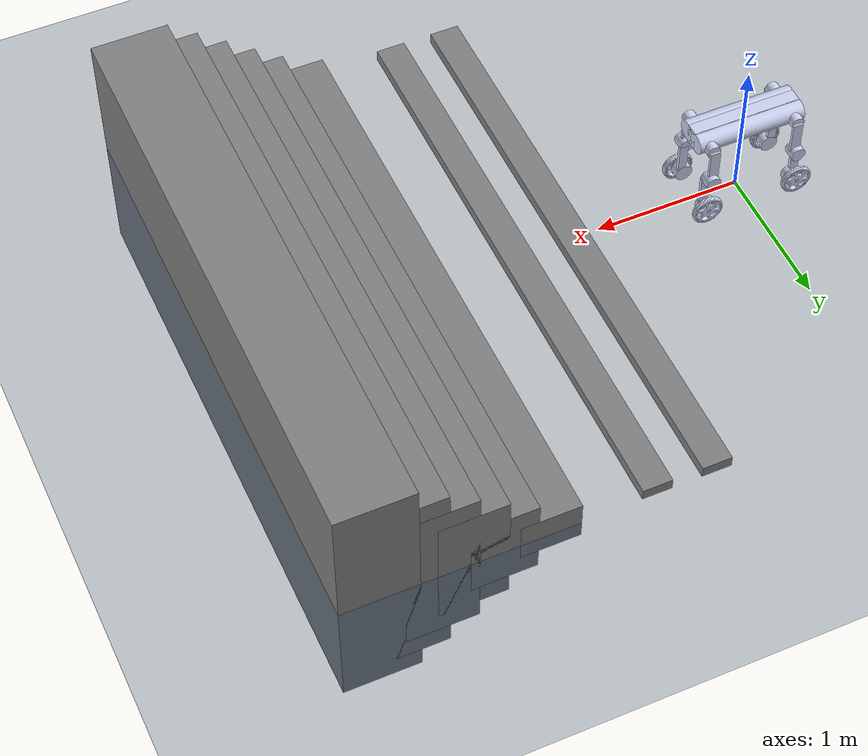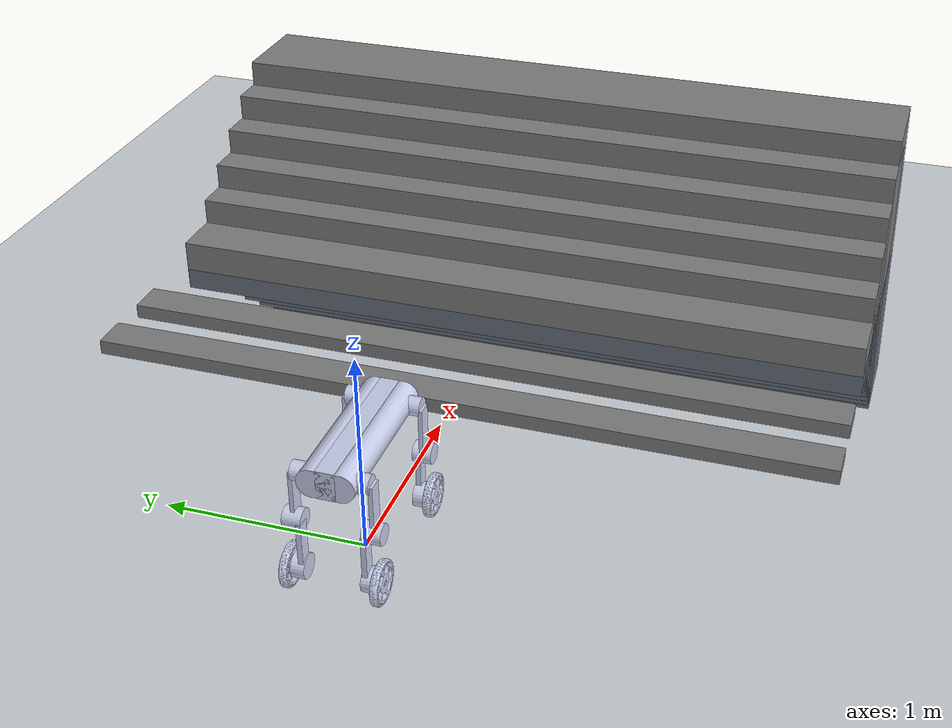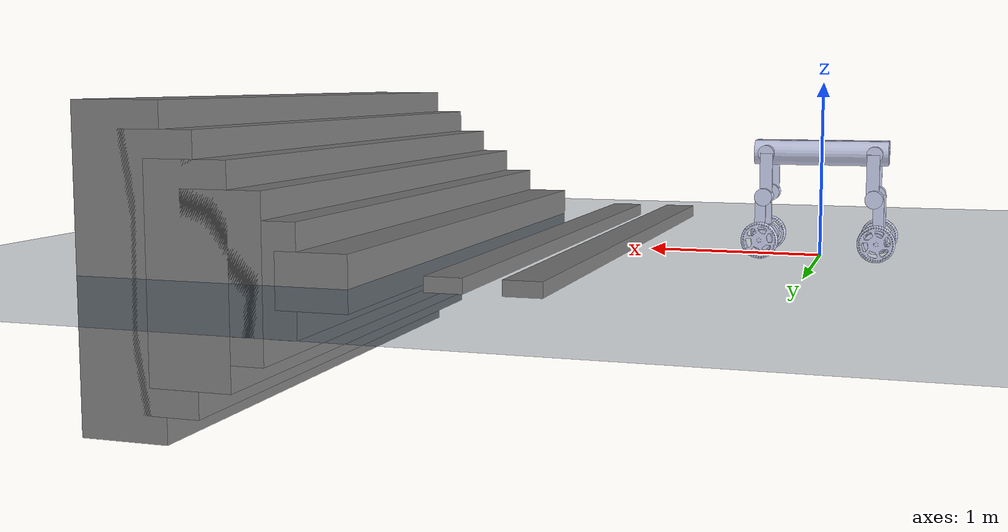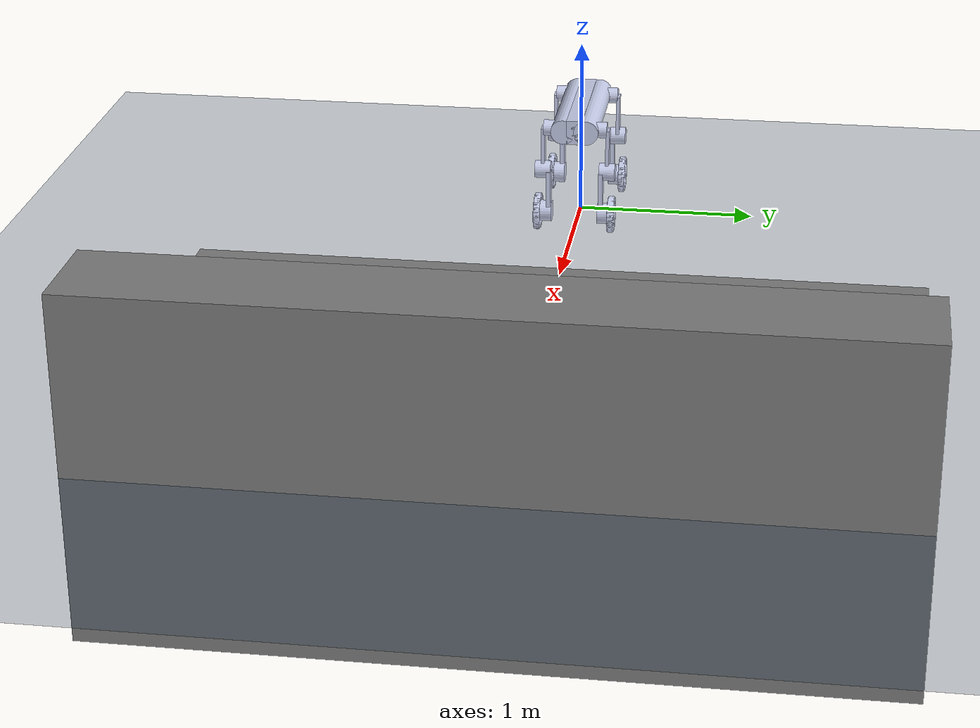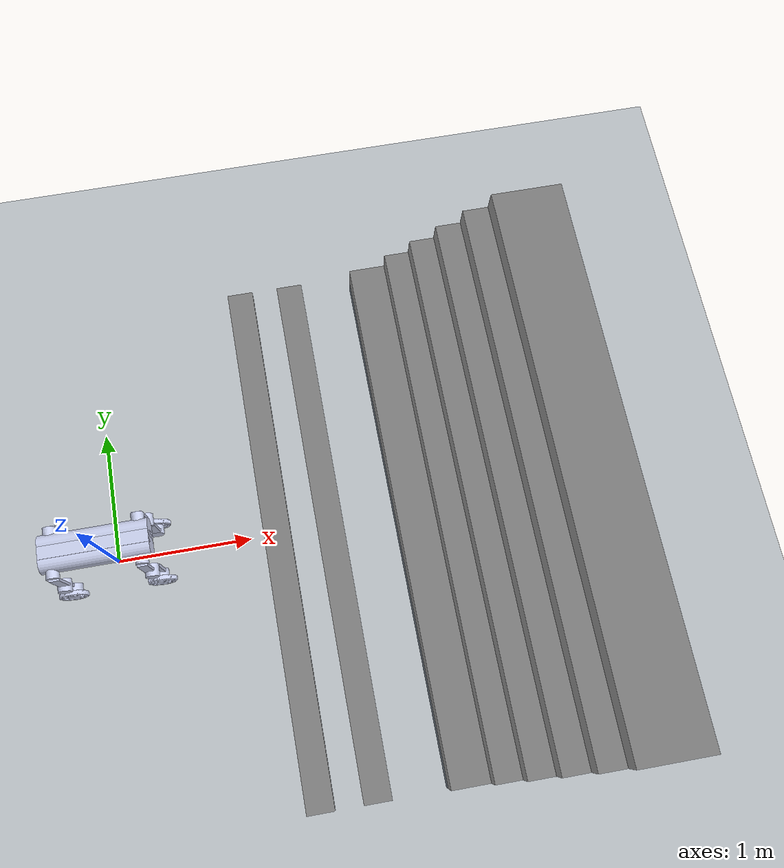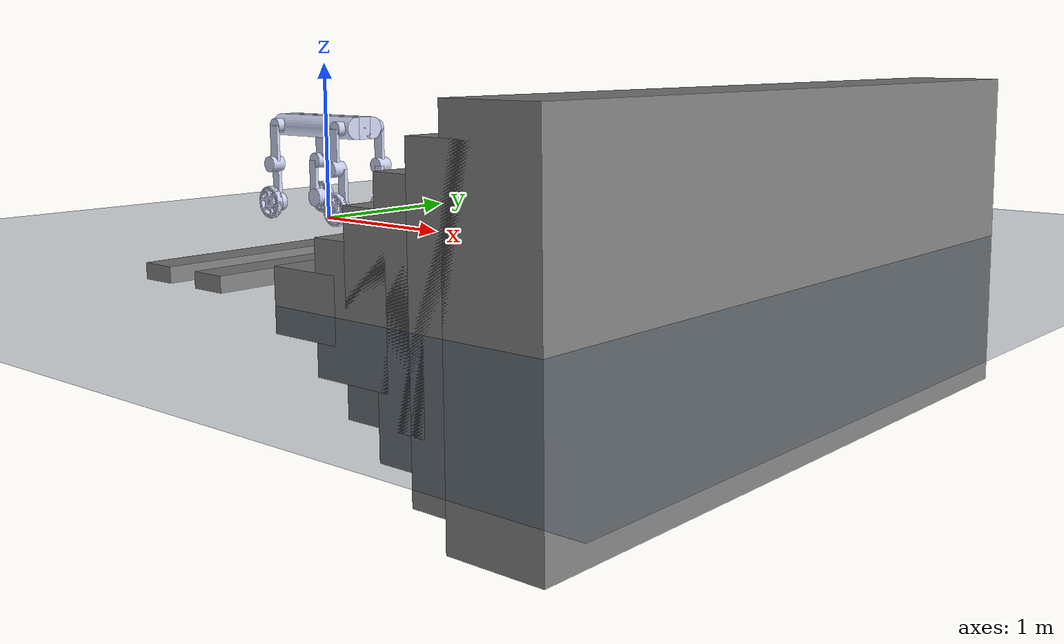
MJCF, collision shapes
<mujoco model="jk04 scene">
  <include file="jk04_description.xml"/>

  <statistic center="0 0 0.1" extent="0.8"/>

  <visual>
    <headlight diffuse="0.6 0.6 0.6" ambient="0.3 0.3 0.3" specular="0 0 0"/>
    <rgba haze="0.15 0.25 0.35 1"/>
    <global azimuth="-130" elevation="-20"/>
  </visual>

  <asset>
    <texture type="skybox" builtin="gradient" rgb1="0.3 0.5 0.7" rgb2="0 0 0" width="512" height="3072"/>
    <texture type="2d" name="groundplane" builtin="checker" mark="edge" rgb1="0.2 0.3 0.4" rgb2="0.1 0.2 0.3"
      markrgb="0.8 0.8 0.8" width="300" height="300"/>
    <material name="groundplane" texture="groundplane" texuniform="true" texrepeat="5 5" reflectance="0.2"/>
  </asset>

  <worldbody>
    <light pos="0 0 1.5" dir="0 0 -1" directional="true"/>
    <geom name="floor" size="0 0 0.05" type="plane" material="groundplane"/>

    <geom pos="1.2 0 0.04" type="box"  size="0.1 2 0.04" quat="1.0 0 0 0"/>
    <geom pos="1.6 0 0.04" type="box"  size="0.1 2 0.04" quat="1.0 0 0 0"/>

    <geom pos="2.3 0 0.02" type="box"  size="0.2 2 0.15" quat="1.0 0 0 0"/>
    <geom pos="2.6 0 0.02" type="box"  size="0.22 2 0.3" quat="1.0 0 0 0"/>
    <geom pos="2.8 0 0.02" type="box"  size="0.23 2 0.45" quat="1.0 0 0 0"/>
    <geom pos="3 0 0.02" type="box"  size="0.24 2 0.6" quat="1.0 0 0 0"/>
    <geom pos="3.2 0 0.02" type="box"  size="0.25 2 0.75" quat="1.0 0 0 0"/>
    <geom pos="3.4 0 0.02" type="box"  size="0.26 2 0.9" quat="1.0 0 0 0"/>
  </worldbody>
</mujoco>

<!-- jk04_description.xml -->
<mujoco model="jk04_description">
    <default>
        <default class="jk04">
            <default class="motor">
                <joint/>
                <motor/>
            </default>
            <default class="visual">
                <geom material="default_material" contype="0" conaffinity="0" group="2"/>
            </default>
            <default class="collision">
                <geom material="collision_material" condim="3" contype="1" conaffinity="1" solref="0.005 1"
                      friction="1 0.01 0.001" density="0" group="1"/>
            </default>
        </default>
    </default>

  <compiler angle="radian" meshdir="/home/lily/rl_sar/rl_sar_jk234/src/rl_sar_zoo/jk04_description/meshes/"/>
  <compiler autolimits="true"/>
  <asset>
    <mesh name="base_link" file="base_link.STL"/>
    <mesh name="fl_hipx" file="fl_hipx.STL"/>
    <mesh name="fl_hipy" file="fl_hipy.STL"/>
    <mesh name="fl_knee" file="fl_knee.STL"/>
    <mesh name="fl_wheel" file="fl_wheel.STL"/>
    <mesh name="fr_hipx" file="fr_hipx.STL"/>
    <mesh name="fr_hipy" file="fr_hipy.STL"/>
    <mesh name="fr_knee" file="fr_knee.STL"/>
    <mesh name="fr_wheel" file="fr_wheel.STL"/>
    <mesh name="hl_hipx" file="hl_hipx.STL"/>`
    <mesh name="hl_hipy" file="hl_hipy.STL"/>
    <mesh name="hl_knee" file="hl_knee.STL"/>
    <mesh name="hl_wheel" file="hl_wheel.STL"/>
    <mesh name="hr_hipx" file="hr_hipx.STL"/>
    <mesh name="hr_hipy" file="hr_hipy.STL"/>
    <mesh name="hr_knee" file="hr_knee.STL"/>
    <mesh name="hr_wheel" file="hr_wheel.STL"/>
  </asset>

  <worldbody>
    <body name="base_link" pos="0 0 0.6">
      <inertial pos="0.000675035 2.78408e-05 0.000655279" quat="0.000154212 0.707105 -4.9244e-05 0.707109" mass="16.3316" diaginertia="0.531655 0.472244 0.103079"/>
      <geom type="mesh" contype="0" conaffinity="0" group="1" density="0" rgba="0.792157 0.819608 0.933333 1" mesh="base_link"/>
      <geom size="0.375 0.045 0.07" type="box" rgba="0.792157 0.819608 0.933333 1"/>
      <geom size="0.07 0.375" pos="0 0.065 0" quat="0.707107 0 0.707107 0" type="cylinder" rgba="0.792157 0.819608 0.933333 1"/>
      <geom size="0.07 0.375" pos="0 -0.065 0" quat="0.707107 0 0.707107 0" type="cylinder" rgba="0.792157 0.819608 0.933333 1"/>
      <body name="fl_hipx" pos="0.247 0.0750008 0">
        <inertial pos="0.0556554 0.0328206 0.000193016" quat="0.373595 0.647866 -0.276676 0.603446" mass="1.5575" diaginertia="0.00219191 0.00208826 0.001613"/>
        <joint name="fl_hipx_joint" pos="0 0 0" axis="1 0 0" range="-0.611 0.611" actuatorfrcrange="-96 96"/>
        <geom type="mesh" contype="0" conaffinity="0" group="1" density="0" rgba="0.792157 0.819608 0.933333 1" mesh="fl_hipx"/>
        <geom size="0.045 0.05" pos="0.055 0.055 0" quat="0.707107 0.707107 0 0" type="cylinder" rgba="0.792157 0.819608 0.933333 1"/>
        <body name="fl_hipy" pos="0.0599991 0.0685997 0">
          <inertial pos="0.000258835 0.034274 -0.110988" quat="0.705684 -0.0166195 0.0392081 0.707246" mass="2.035" diaginertia="0.0230749 0.022166 0.00199006"/>
          <joint name="fl_hipy_joint" pos="0 0 0" axis="0 1 0" range="-1.57 1.57" actuatorfrcrange="-96 96"/>
          <geom type="mesh" contype="0" conaffinity="0" group="1" density="0" rgba="0.792157 0.819608 0.933333 1" mesh="fl_hipy"/>
          <geom size="0.035 0.01 0.125" pos="-0.01 0.04 -0.125" type="box" rgba="0.792157 0.819608 0.933333 1"/>
          <geom size="0.05 0.045" pos="0 0.04 -0.25" quat="0.707107 0.707107 0 0" type="cylinder" rgba="0.792157 0.819608 0.933333 1"/>
          <body name="fl_knee" pos="0.00899991 0.0358998 -0.25">
            <inertial pos="0.0101548 -0.0225144 -0.137662" quat="0.792974 -0.0453958 0.0483556 0.605635" mass="1.931" diaginertia="0.0207212 0.0203778 0.0020487"/>
            <joint name="fl_knee_joint" pos="0 0 0" axis="0 1 0" range="-3.14 3.14" actuatorfrcrange="-128 128"/>
            <geom type="mesh" contype="0" conaffinity="0" group="1" density="0" rgba="0.792157 0.819608 0.933333 1" mesh="fl_knee"/>
            <geom size="0.03 0.0125 0.125" pos="0.015 -0.03 -0.125" type="box" rgba="0.792157 0.819608 0.933333 1"/>
            <geom size="0.06 0.0325" pos="0 -0.015 -0.25" quat="0.707107 0.707107 0 0" type="cylinder" rgba="0.792157 0.819608 0.933333 1"/>
            <body name="fl_wheel" pos="0.00899992 0.0449 -0.25">
              <inertial pos="-1.57184e-06 -0.0115004 3.02361e-07" quat="0.524056 0.474727 0.474727 0.524056" mass="0.943" diaginertia="0.0070243 0.00360758 0.00360748"/>
              <joint name="fl_wheel_joint" pos="0 0 0" axis="0 1 0" actuatorfrcrange="-54 54"/>
              <geom type="mesh" contype="0" conaffinity="0" group="1" density="0" rgba="0.792157 0.819608 0.933333 1" mesh="fl_wheel"/>
              <geom type="mesh" rgba="0.792157 0.819608 0.933333 1" mesh="fl_wheel"/>
            </body>
          </body>
        </body>
      </body>
      <body name="fr_hipx" pos="0.247 -0.074999 0">
        <inertial pos="0.0556557 -0.0328219 -0.00019214" quat="0.326526 0.616981 -0.324875 0.638099" mass="1.5575" diaginertia="0.00218999 0.00209058 0.00161259"/>
        <joint name="fr_hipx_joint" pos="0 0 0" axis="1 0 0" range="-0.611 0.611" actuatorfrcrange="-96 96"/>
        <geom type="mesh" contype="0" conaffinity="0" group="1" density="0" rgba="0.792157 0.819608 0.933333 1" mesh="fr_hipx"/>
        <geom size="0.045 0.05" pos="0.055 -0.055 0" quat="0.707107 0.707107 0 0" type="cylinder" rgba="0.792157 0.819608 0.933333 1"/>
        <body name="fr_hipy" pos="0.0599995 -0.0686016 0">
          <inertial pos="0.000147305 -0.0342745 -0.111062" quat="0.703896 0.0386374 -0.0174093 0.709038" mass="2.035" diaginertia="0.0231072 0.0221989 0.00198787"/>
          <joint name="fr_hipy_joint" pos="0 0 0" axis="0 1 0" range="-1.57 1.57" actuatorfrcrange="-96 96"/>
          <geom type="mesh" contype="0" conaffinity="0" group="1" density="0" rgba="0.792157 0.819608 0.933333 1" mesh="fr_hipy"/>
          <geom size="0.035 0.01 0.125" pos="-0.01 -0.04 -0.125" type="box" rgba="0.792157 0.819608 0.933333 1"/>
          <geom size="0.05 0.045" pos="0 -0.04 -0.25" quat="0.707107 0.707107 0 0" type="cylinder" rgba="0.792157 0.819608 0.933333 1"/>
          <body name="fr_knee" pos="0.00899991 -0.0358998 -0.25">
            <inertial pos="0.0101549 0.0225146 -0.137662" quat="0.614231 0.0487038 -0.0451045 0.786329" mass="1.931" diaginertia="0.0207015 0.0203767 0.00203791"/>
            <joint name="fr_knee_joint" pos="0 0 0" axis="0 1 0" range="-3.14 3.14" actuatorfrcrange="-128 128"/>
            <geom type="mesh" contype="0" conaffinity="0" group="1" density="0" rgba="0.792157 0.819608 0.933333 1" mesh="fr_knee"/>
            <geom size="0.03 0.0125 0.125" pos="0.015 0.03 -0.125" type="box" rgba="0.792157 0.819608 0.933333 1"/>
            <geom size="0.06 0.0325" pos="0 0.015 -0.25" quat="0.707107 0.707107 0 0" type="cylinder" rgba="0.792157 0.819608 0.933333 1"/>
            <body name="fr_wheel" pos="0.00899992 -0.0449 -0.25">
              <inertial pos="-1.57177e-06 0.0115004 -3.02682e-07" quat="0.474727 0.524056 0.524056 0.474727" mass="0.943" diaginertia="0.0070243 0.00360758 0.00360748"/>
              <joint name="fr_wheel_joint" pos="0 0 0" axis="0 1 0" actuatorfrcrange="-54 54"/>
              <geom type="mesh" contype="0" conaffinity="0" group="1" density="0" rgba="0.792157 0.819608 0.933333 1" mesh="fr_wheel"/>
              <geom type="mesh" rgba="0.792157 0.819608 0.933333 1" mesh="fr_wheel"/>
            </body>
          </body>
        </body>
      </body>
      <body name="hl_hipx" pos="-0.247 0.074999 0">
        <inertial pos="-0.0556556 0.0328221 -0.000191947" quat="0.324875 0.638099 -0.326526 0.616981" mass="1.5575" diaginertia="0.00218999 0.00209058 0.00161259"/>
        <joint name="hl_hipx_joint" pos="0 0 0" axis="1 0 0" range="-0.611 0.611" actuatorfrcrange="-96 96"/>
        <geom type="mesh" contype="0" conaffinity="0" group="1" density="0" rgba="0.792157 0.819608 0.933333 1" mesh="hl_hipx"/>
        <geom size="0.045 0.05" pos="-0.055 0.055 0" quat="0.707107 0.707107 0 0" type="cylinder" rgba="0.792157 0.819608 0.933333 1"/>
        <body name="hl_hipy" pos="-0.0599997 0.0686015 0">
          <inertial pos="-0.000147305 0.0342745 -0.111062" quat="0.703896 -0.0386374 0.0174093 0.709038" mass="2.035" diaginertia="0.0231072 0.0221989 0.00198787"/>
          <joint name="hl_hipy_joint" pos="0 0 0" axis="0 1 0" range="-1.57 1.57" actuatorfrcrange="-96 96"/>
          <geom type="mesh" contype="0" conaffinity="0" group="1" density="0" rgba="0.792157 0.819608 0.933333 1" mesh="hl_hipy"/>
          <geom size="0.035 0.01 0.125" pos="0.01 0.04 -0.125" type="box" rgba="0.792157 0.819608 0.933333 1"/>
          <geom size="0.05 0.045" pos="0 0.04 -0.25" quat="0.707107 0.707107 0 0" type="cylinder" rgba="0.792157 0.819608 0.933333 1"/>
          <body name="hl_knee" pos="-0.00899991 0.0358998 -0.25">
            <inertial pos="-0.0101549 -0.0225146 -0.137662" quat="0.600549 -0.0485133 0.0447296 0.79686" mass="1.931" diaginertia="0.0207934 0.0204209 0.00207725"/>
            <joint name="hl_knee_joint" pos="0 0 0" axis="0 1 0" range="-3.14 3.14" actuatorfrcrange="-128 128"/>
            <geom type="mesh" contype="0" conaffinity="0" group="1" density="0" rgba="0.792157 0.819608 0.933333 1" mesh="hl_knee"/>
            <geom size="0.03 0.0125 0.125" pos="-0.015 -0.03 -0.125" type="box" rgba="0.792157 0.819608 0.933333 1"/>
            <geom size="0.06 0.0325" pos="0 -0.015 -0.25" quat="0.707107 0.707107 0 0" type="cylinder" rgba="0.792157 0.819608 0.933333 1"/>
            <body name="hl_wheel" pos="-0.00899992 0.0449 -0.25">
              <inertial pos="-1.61318e-06 -0.0115004 3.02355e-07" quat="0.524056 0.474727 0.474727 0.524056" mass="0.943" diaginertia="0.0070243 0.00360758 0.00360748"/>
              <joint name="hl_wheel_joint" pos="0 0 0" axis="0 1 0" actuatorfrcrange="-54 54"/>
              <geom type="mesh" contype="0" conaffinity="0" group="1" density="0" rgba="0.792157 0.819608 0.933333 1" mesh="hl_wheel"/>
              <geom type="mesh" rgba="0.792157 0.819608 0.933333 1" mesh="hl_wheel"/>
            </body>
          </body>
        </body>
      </body>
      <body name="hr_hipx" pos="-0.247 -0.0750008 0">
        <inertial pos="-0.0556556 -0.0328203 0.000192734" quat="0.616981 0.326526 -0.638099 0.324875" mass="1.5575" diaginertia="0.00218999 0.00209058 0.00161259"/>
        <joint name="hr_hipx_joint" pos="0 0 0" axis="1 0 0" range="-0.611 0.611" actuatorfrcrange="-96 96"/>
        <geom type="mesh" contype="0" conaffinity="0" group="1" density="0" rgba="0.792157 0.819608 0.933333 1" mesh="hr_hipx"/>
        <geom size="0.045 0.05" pos="-0.055 -0.055 0" quat="0.707107 0.707107 0 0" type="cylinder" rgba="0.792157 0.819608 0.933333 1"/>
        <body name="hr_hipy" pos="-0.0599994 -0.0685997 0">
          <inertial pos="-0.000258835 -0.034274 -0.110988" quat="0.705684 0.0166195 -0.0392081 0.707246" mass="2.035" diaginertia="0.0230749 0.022166 0.00199006"/>
          <joint name="hr_hipy_joint" pos="0 0 0" axis="0 1 0" range="-1.57 1.57" actuatorfrcrange="-96 96"/>
          <geom type="mesh" contype="0" conaffinity="0" group="1" density="0" rgba="0.792157 0.819608 0.933333 1" mesh="hr_hipy"/>
          <geom size="0.035 0.01 0.125" pos="0.01 -0.04 -0.125" type="box" rgba="0.792157 0.819608 0.933333 1"/>
          <geom size="0.05 0.045" pos="0 -0.04 -0.25" quat="0.707107 0.707107 0 0" type="cylinder" rgba="0.792157 0.819608 0.933333 1"/>
          <body name="hr_knee" pos="-0.00899991 -0.0358998 -0.25">
            <inertial pos="-0.0101548 0.0225144 -0.137662" quat="0.790817 0.0453524 -0.0484636 0.608442" mass="1.931" diaginertia="0.0207083 0.0203757 0.00204055"/>
            <joint name="hr_knee_joint" pos="0 0 0" axis="0 1 0" range="-3.14 3.14" actuatorfrcrange="-128 128"/>
            <geom type="mesh" contype="0" conaffinity="0" group="1" density="0" rgba="0.792157 0.819608 0.933333 1" mesh="hr_knee"/>
            <geom size="0.03 0.0125 0.125" pos="-0.015 0.03 -0.125" type="box" rgba="0.792157 0.819608 0.933333 1"/>
            <geom size="0.06 0.0325" pos="0 0.015 -0.25" quat="0.707107 0.707107 0 0" type="cylinder" rgba="0.792157 0.819608 0.933333 1"/>
            <body name="hr_wheel" pos="-0.00899992 -0.0449 -0.25">
              <inertial pos="-1.61311e-06 0.0115004 -3.02687e-07" quat="0.474727 0.524056 0.524056 0.474727" mass="0.943" diaginertia="0.0070243 0.00360758 0.00360748"/>
              <joint name="hr_wheel_joint" pos="0 0 0" axis="0 1 0" actuatorfrcrange="-54 54"/>
              <geom type="mesh" contype="0" conaffinity="0" group="1" density="0" rgba="0.792157 0.819608 0.933333 1" mesh="hr_wheel"/>
              <geom type="mesh" rgba="0.792157 0.819608 0.933333 1" mesh="hr_wheel"/>
            </body>
          </body>
        </body>
      </body>
      <body name="imu_link" pos="-0.02557 0 0.04232">
        <inertial pos="0 0 0" mass="0" diaginertia="0 0 0"/>
        <site name="imu_site" pos="0 0 0"/>
      </body>
    </body>
  </worldbody>

    <actuator>
        <motor name="fl_hipx_joint" joint="fl_hipx_joint" ctrllimited="true" ctrlrange="-120 120" gear="1"/>
        <motor name="fl_hipy_joint" joint="fl_hipy_joint" ctrllimited="true" ctrlrange="-120 120" gear="1"/>
        <motor name="fl_knee_joint" joint="fl_knee_joint" ctrllimited="true" ctrlrange="-120 120" gear="1"/>

        <motor name="hl_hipx_joint" joint="hl_hipx_joint" ctrllimited="true" ctrlrange="-120 120" gear="1"/>
        <motor name="hl_hipy_joint" joint="hl_hipy_joint" ctrllimited="true" ctrlrange="-120 120" gear="1"/>
        <motor name="hl_knee_joint" joint="hl_knee_joint" ctrllimited="true" ctrlrange="-120 120" gear="1"/>

        <motor name="fr_hipx_joint" joint="fr_hipx_joint" ctrllimited="true" ctrlrange="-120 120" gear="1"/>
        <motor name="fr_hipy_joint" joint="fr_hipy_joint" ctrllimited="true" ctrlrange="-120 120" gear="1"/>
        <motor name="fr_knee_joint" joint="fr_knee_joint" ctrllimited="true" ctrlrange="-120 120" gear="1"/>

        <motor name="hr_hipx_joint" joint="hr_hipx_joint" ctrllimited="true" ctrlrange="-120 120" gear="1"/>
        <motor name="hr_hipy_joint" joint="hr_hipy_joint" ctrllimited="true" ctrlrange="-120 120" gear="1"/>
        <motor name="hr_knee_joint" joint="hr_knee_joint" ctrllimited="true" ctrlrange="-120 120" gear="1"/>

        <motor name="fl_wheel_joint" joint="fl_wheel_joint" ctrllimited="true" ctrlrange="-21.6 21.6" gear="1"/>
        <motor name="hl_wheel_joint" joint="hl_wheel_joint" ctrllimited="true" ctrlrange="-21.6 21.6" gear="1"/>
        <motor name="fr_wheel_joint" joint="fr_wheel_joint" ctrllimited="true" ctrlrange="-21.6 21.6" gear="1"/>
        <motor name="hr_wheel_joint" joint="hr_wheel_joint" ctrllimited="true" ctrlrange="-21.6 21.6" gear="1"/>
    </actuator>

    <contact>
        <exclude body1="base_link" body2="fl_hipx"/>
        <exclude body1="fl_hipx" body2="fl_hipy"/>
        <exclude body1="fl_hipy" body2="fl_knee"/>

        <exclude body1="base_link" body2="hl_hipx"/>
        <exclude body1="hl_hipx" body2="hl_hipy"/>
        <exclude body1="hl_hipy" body2="hl_knee"/>

        <exclude body1="base_link" body2="fr_hipx"/>
        <exclude body1="fr_hipx" body2="fr_hipy"/>
        <exclude body1="fr_hipy" body2="fr_knee"/>

        <exclude body1="base_link" body2="hr_hipx"/>
        <exclude body1="hr_hipx" body2="hr_hipy"/>
        <exclude body1="hr_hipy" body2="hr_knee"/>

        <exclude body1="fl_knee" body2="fl_wheel"/>
        <exclude body1="hl_knee" body2="hl_wheel"/>
        <exclude body1="fr_knee" body2="fr_wheel"/>
        <exclude body1="hr_knee" body2="hr_wheel"/>
    </contact>

    <sensor>
        <framequat name="base_quat" objtype="site" objname="imu_site"/>
        <accelerometer site="imu_site"/>
        <gyro site="imu_site"/>

    </sensor>

</mujoco>
